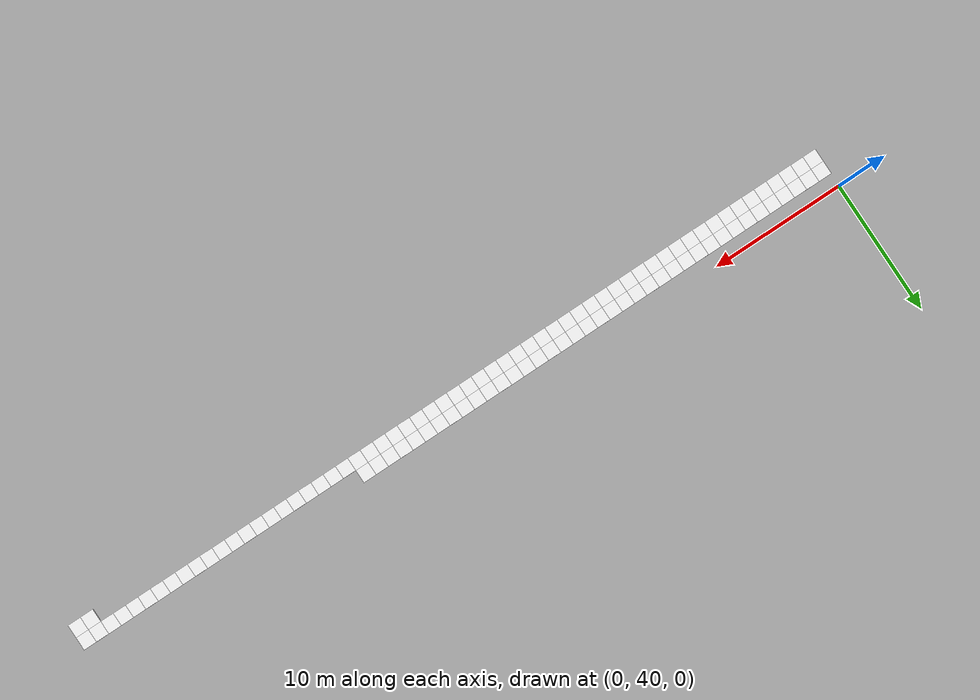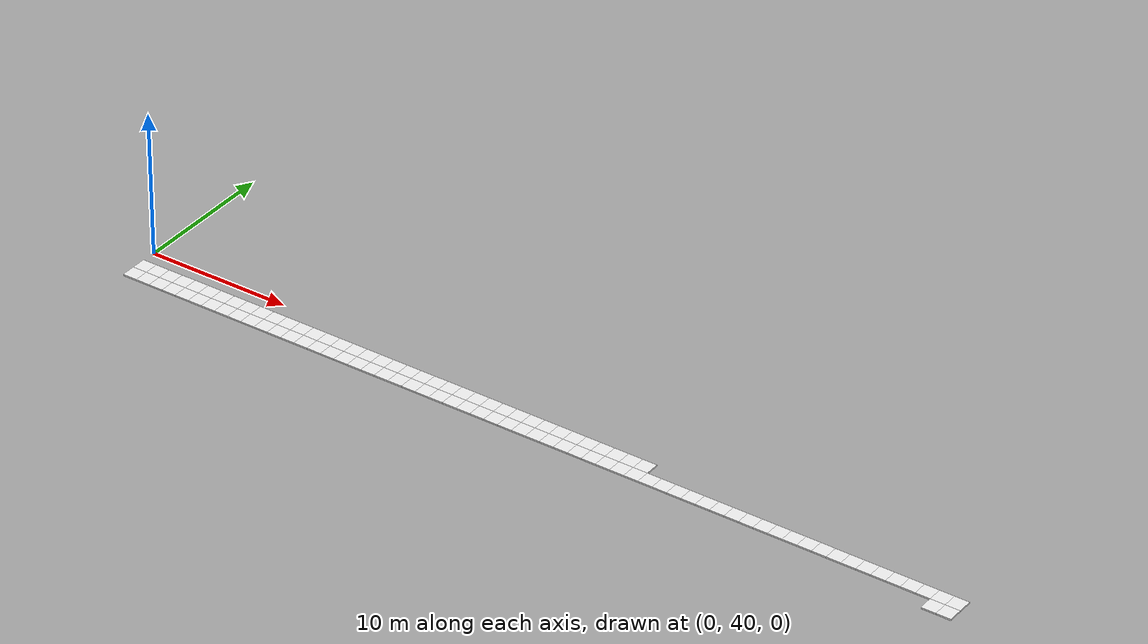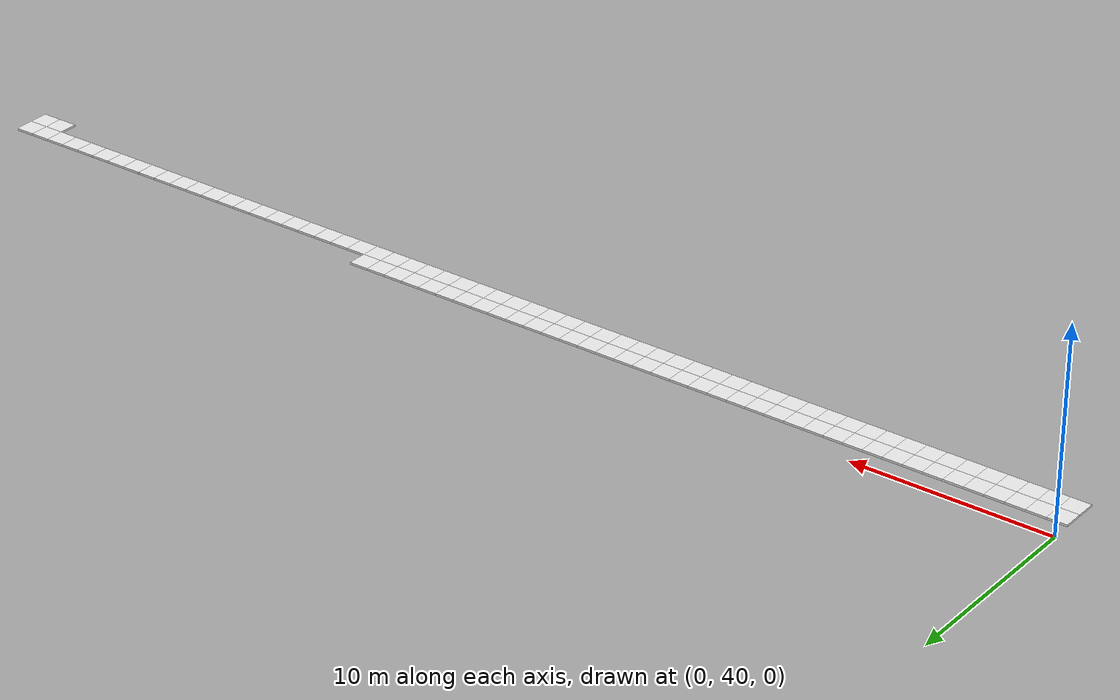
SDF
<sdf version="1.6">
 <world name="grid_world">
  <model name="cell_58_36">
   <static>true</static>
   <link name="link">
    <collision name="collision"><geometry><box><size>1 1 0.1</size></box></geometry></collision>
    <visual name="visual">
     <geometry><box><size>1 1 0.1</size></box></geometry>
     <material>
      <script><uri>file://media/materials/scripts/gazebo.material</uri><name>Gazebo/White</name></script>
     </material>
    </visual>
    <pose>58.5 36.5 0.05 0 0 0</pose>
   </link>
  </model>
  <model name="cell_59_36">
   <static>true</static>
   <link name="link">
    <collision name="collision"><geometry><box><size>1 1 0.1</size></box></geometry></collision>
    <visual name="visual">
     <geometry><box><size>1 1 0.1</size></box></geometry>
     <material>
      <script><uri>file://media/materials/scripts/gazebo.material</uri><name>Gazebo/White</name></script>
     </material>
    </visual>
    <pose>59.5 36.5 0.05 0 0 0</pose>
   </link>
  </model>
  <model name="cell_0_37">
   <static>true</static>
   <link name="link">
    <collision name="collision"><geometry><box><size>1 1 0.1</size></box></geometry></collision>
    <visual name="visual">
     <geometry><box><size>1 1 0.1</size></box></geometry>
     <material>
      <script><uri>file://media/materials/scripts/gazebo.material</uri><name>Gazebo/White</name></script>
     </material>
    </visual>
    <pose>0.5 37.5 0.05 0 0 0</pose>
   </link>
  </model>
  <model name="cell_1_37">
   <static>true</static>
   <link name="link">
    <collision name="collision"><geometry><box><size>1 1 0.1</size></box></geometry></collision>
    <visual name="visual">
     <geometry><box><size>1 1 0.1</size></box></geometry>
     <material>
      <script><uri>file://media/materials/scripts/gazebo.material</uri><name>Gazebo/White</name></script>
     </material>
    </visual>
    <pose>1.5 37.5 0.05 0 0 0</pose>
   </link>
  </model>
  <model name="cell_2_37">
   <static>true</static>
   <link name="link">
    <collision name="collision"><geometry><box><size>1 1 0.1</size></box></geometry></collision>
    <visual name="visual">
     <geometry><box><size>1 1 0.1</size></box></geometry>
     <material>
      <script><uri>file://media/materials/scripts/gazebo.material</uri><name>Gazebo/White</name></script>
     </material>
    </visual>
    <pose>2.5 37.5 0.05 0 0 0</pose>
   </link>
  </model>
  <model name="cell_3_37">
   <static>true</static>
   <link name="link">
    <collision name="collision"><geometry><box><size>1 1 0.1</size></box></geometry></collision>
    <visual name="visual">
     <geometry><box><size>1 1 0.1</size></box></geometry>
     <material>
      <script><uri>file://media/materials/scripts/gazebo.material</uri><name>Gazebo/White</name></script>
     </material>
    </visual>
    <pose>3.5 37.5 0.05 0 0 0</pose>
   </link>
  </model>
  <model name="cell_4_37">
   <static>true</static>
   <link name="link">
    <collision name="collision"><geometry><box><size>1 1 0.1</size></box></geometry></collision>
    <visual name="visual">
     <geometry><box><size>1 1 0.1</size></box></geometry>
     <material>
      <script><uri>file://media/materials/scripts/gazebo.material</uri><name>Gazebo/White</name></script>
     </material>
    </visual>
    <pose>4.5 37.5 0.05 0 0 0</pose>
   </link>
  </model>
  <model name="cell_5_37">
   <static>true</static>
   <link name="link">
    <collision name="collision"><geometry><box><size>1 1 0.1</size></box></geometry></collision>
    <visual name="visual">
     <geometry><box><size>1 1 0.1</size></box></geometry>
     <material>
      <script><uri>file://media/materials/scripts/gazebo.material</uri><name>Gazebo/White</name></script>
     </material>
    </visual>
    <pose>5.5 37.5 0.05 0 0 0</pose>
   </link>
  </model>
  <model name="cell_6_37">
   <static>true</static>
   <link name="link">
    <collision name="collision"><geometry><box><size>1 1 0.1</size></box></geometry></collision>
    <visual name="visual">
     <geometry><box><size>1 1 0.1</size></box></geometry>
     <material>
      <script><uri>file://media/materials/scripts/gazebo.material</uri><name>Gazebo/White</name></script>
     </material>
    </visual>
    <pose>6.5 37.5 0.05 0 0 0</pose>
   </link>
  </model>
  <model name="cell_7_37">
   <static>true</static>
   <link name="link">
    <collision name="collision"><geometry><box><size>1 1 0.1</size></box></geometry></collision>
    <visual name="visual">
     <geometry><box><size>1 1 0.1</size></box></geometry>
     <material>
      <script><uri>file://media/materials/scripts/gazebo.material</uri><name>Gazebo/White</name></script>
     </material>
    </visual>
    <pose>7.5 37.5 0.05 0 0 0</pose>
   </link>
  </model>
  <model name="cell_8_37">
   <static>true</static>
   <link name="link">
    <collision name="collision"><geometry><box><size>1 1 0.1</size></box></geometry></collision>
    <visual name="visual">
     <geometry><box><size>1 1 0.1</size></box></geometry>
     <material>
      <script><uri>file://media/materials/scripts/gazebo.material</uri><name>Gazebo/White</name></script>
     </material>
    </visual>
    <pose>8.5 37.5 0.05 0 0 0</pose>
   </link>
  </model>
  <model name="cell_9_37">
   <static>true</static>
   <link name="link">
    <collision name="collision"><geometry><box><size>1 1 0.1</size></box></geometry></collision>
    <visual name="visual">
     <geometry><box><size>1 1 0.1</size></box></geometry>
     <material>
      <script><uri>file://media/materials/scripts/gazebo.material</uri><name>Gazebo/White</name></script>
     </material>
    </visual>
    <pose>9.5 37.5 0.05 0 0 0</pose>
   </link>
  </model>
  <model name="cell_10_37">
   <static>true</static>
   <link name="link">
    <collision name="collision"><geometry><box><size>1 1 0.1</size></box></geometry></collision>
    <visual name="visual">
     <geometry><box><size>1 1 0.1</size></box></geometry>
     <material>
      <script><uri>file://media/materials/scripts/gazebo.material</uri><name>Gazebo/White</name></script>
     </material>
    </visual>
    <pose>10.5 37.5 0.05 0 0 0</pose>
   </link>
  </model>
  <model name="cell_11_37">
   <static>true</static>
   <link name="link">
    <collision name="collision"><geometry><box><size>1 1 0.1</size></box></geometry></collision>
    <visual name="visual">
     <geometry><box><size>1 1 0.1</size></box></geometry>
     <material>
      <script><uri>file://media/materials/scripts/gazebo.material</uri><name>Gazebo/White</name></script>
     </material>
    </visual>
    <pose>11.5 37.5 0.05 0 0 0</pose>
   </link>
  </model>
  <model name="cell_12_37">
   <static>true</static>
   <link name="link">
    <collision name="collision"><geometry><box><size>1 1 0.1</size></box></geometry></collision>
    <visual name="visual">
     <geometry><box><size>1 1 0.1</size></box></geometry>
     <material>
      <script><uri>file://media/materials/scripts/gazebo.material</uri><name>Gazebo/White</name></script>
     </material>
    </visual>
    <pose>12.5 37.5 0.05 0 0 0</pose>
   </link>
  </model>
  <model name="cell_13_37">
   <static>true</static>
   <link name="link">
    <collision name="collision"><geometry><box><size>1 1 0.1</size></box></geometry></collision>
    <visual name="visual">
     <geometry><box><size>1 1 0.1</size></box></geometry>
     <material>
      <script><uri>file://media/materials/scripts/gazebo.material</uri><name>Gazebo/White</name></script>
     </material>
    </visual>
    <pose>13.5 37.5 0.05 0 0 0</pose>
   </link>
  </model>
  <model name="cell_14_37">
   <static>true</static>
   <link name="link">
    <collision name="collision"><geometry><box><size>1 1 0.1</size></box></geometry></collision>
    <visual name="visual">
     <geometry><box><size>1 1 0.1</size></box></geometry>
     <material>
      <script><uri>file://media/materials/scripts/gazebo.material</uri><name>Gazebo/White</name></script>
     </material>
    </visual>
    <pose>14.5 37.5 0.05 0 0 0</pose>
   </link>
  </model>
  <model name="cell_15_37">
   <static>true</static>
   <link name="link">
    <collision name="collision"><geometry><box><size>1 1 0.1</size></box></geometry></collision>
    <visual name="visual">
     <geometry><box><size>1 1 0.1</size></box></geometry>
     <material>
      <script><uri>file://media/materials/scripts/gazebo.material</uri><name>Gazebo/White</name></script>
     </material>
    </visual>
    <pose>15.5 37.5 0.05 0 0 0</pose>
   </link>
  </model>
  <model name="cell_16_37">
   <static>true</static>
   <link name="link">
    <collision name="collision"><geometry><box><size>1 1 0.1</size></box></geometry></collision>
    <visual name="visual">
     <geometry><box><size>1 1 0.1</size></box></geometry>
     <material>
      <script><uri>file://media/materials/scripts/gazebo.material</uri><name>Gazebo/White</name></script>
     </material>
    </visual>
    <pose>16.5 37.5 0.05 0 0 0</pose>
   </link>
  </model>
  <model name="cell_17_37">
   <static>true</static>
   <link name="link">
    <collision name="collision"><geometry><box><size>1 1 0.1</size></box></geometry></collision>
    <visual name="visual">
     <geometry><box><size>1 1 0.1</size></box></geometry>
     <material>
      <script><uri>file://media/materials/scripts/gazebo.material</uri><name>Gazebo/White</name></script>
     </material>
    </visual>
    <pose>17.5 37.5 0.05 0 0 0</pose>
   </link>
  </model>
  <model name="cell_18_37">
   <static>true</static>
   <link name="link">
    <collision name="collision"><geometry><box><size>1 1 0.1</size></box></geometry></collision>
    <visual name="visual">
     <geometry><box><size>1 1 0.1</size></box></geometry>
     <material>
      <script><uri>file://media/materials/scripts/gazebo.material</uri><name>Gazebo/White</name></script>
     </material>
    </visual>
    <pose>18.5 37.5 0.05 0 0 0</pose>
   </link>
  </model>
  <model name="cell_19_37">
   <static>true</static>
   <link name="link">
    <collision name="collision"><geometry><box><size>1 1 0.1</size></box></geometry></collision>
    <visual name="visual">
     <geometry><box><size>1 1 0.1</size></box></geometry>
     <material>
      <script><uri>file://media/materials/scripts/gazebo.material</uri><name>Gazebo/White</name></script>
     </material>
    </visual>
    <pose>19.5 37.5 0.05 0 0 0</pose>
   </link>
  </model>
  <model name="cell_20_37">
   <static>true</static>
   <link name="link">
    <collision name="collision"><geometry><box><size>1 1 0.1</size></box></geometry></collision>
    <visual name="visual">
     <geometry><box><size>1 1 0.1</size></box></geometry>
     <material>
      <script><uri>file://media/materials/scripts/gazebo.material</uri><name>Gazebo/White</name></script>
     </material>
    </visual>
    <pose>20.5 37.5 0.05 0 0 0</pose>
   </link>
  </model>
  <model name="cell_21_37">
   <static>true</static>
   <link name="link">
    <collision name="collision"><geometry><box><size>1 1 0.1</size></box></geometry></collision>
    <visual name="visual">
     <geometry><box><size>1 1 0.1</size></box></geometry>
     <material>
      <script><uri>file://media/materials/scripts/gazebo.material</uri><name>Gazebo/White</name></script>
     </material>
    </visual>
    <pose>21.5 37.5 0.05 0 0 0</pose>
   </link>
  </model>
  <model name="cell_22_37">
   <static>true</static>
   <link name="link">
    <collision name="collision"><geometry><box><size>1 1 0.1</size></box></geometry></collision>
    <visual name="visual">
     <geometry><box><size>1 1 0.1</size></box></geometry>
     <material>
      <script><uri>file://media/materials/scripts/gazebo.material</uri><name>Gazebo/White</name></script>
     </material>
    </visual>
    <pose>22.5 37.5 0.05 0 0 0</pose>
   </link>
  </model>
  <model name="cell_23_37">
   <static>true</static>
   <link name="link">
    <collision name="collision"><geometry><box><size>1 1 0.1</size></box></geometry></collision>
    <visual name="visual">
     <geometry><box><size>1 1 0.1</size></box></geometry>
     <material>
      <script><uri>file://media/materials/scripts/gazebo.material</uri><name>Gazebo/White</name></script>
     </material>
    </visual>
    <pose>23.5 37.5 0.05 0 0 0</pose>
   </link>
  </model>
  <model name="cell_24_37">
   <static>true</static>
   <link name="link">
    <collision name="collision"><geometry><box><size>1 1 0.1</size></box></geometry></collision>
    <visual name="visual">
     <geometry><box><size>1 1 0.1</size></box></geometry>
     <material>
      <script><uri>file://media/materials/scripts/gazebo.material</uri><name>Gazebo/White</name></script>
     </material>
    </visual>
    <pose>24.5 37.5 0.05 0 0 0</pose>
   </link>
  </model>
  <model name="cell_25_37">
   <static>true</static>
   <link name="link">
    <collision name="collision"><geometry><box><size>1 1 0.1</size></box></geometry></collision>
    <visual name="visual">
     <geometry><box><size>1 1 0.1</size></box></geometry>
     <material>
      <script><uri>file://media/materials/scripts/gazebo.material</uri><name>Gazebo/White</name></script>
     </material>
    </visual>
    <pose>25.5 37.5 0.05 0 0 0</pose>
   </link>
  </model>
  <model name="cell_26_37">
   <static>true</static>
   <link name="link">
    <collision name="collision"><geometry><box><size>1 1 0.1</size></box></geometry></collision>
    <visual name="visual">
     <geometry><box><size>1 1 0.1</size></box></geometry>
     <material>
      <script><uri>file://media/materials/scripts/gazebo.material</uri><name>Gazebo/White</name></script>
     </material>
    </visual>
    <pose>26.5 37.5 0.05 0 0 0</pose>
   </link>
  </model>
  <model name="cell_27_37">
   <static>true</static>
   <link name="link">
    <collision name="collision"><geometry><box><size>1 1 0.1</size></box></geometry></collision>
    <visual name="visual">
     <geometry><box><size>1 1 0.1</size></box></geometry>
     <material>
      <script><uri>file://media/materials/scripts/gazebo.material</uri><name>Gazebo/White</name></script>
     </material>
    </visual>
    <pose>27.5 37.5 0.05 0 0 0</pose>
   </link>
  </model>
  <model name="cell_28_37">
   <static>true</static>
   <link name="link">
    <collision name="collision"><geometry><box><size>1 1 0.1</size></box></geometry></collision>
    <visual name="visual">
     <geometry><box><size>1 1 0.1</size></box></geometry>
     <material>
      <script><uri>file://media/materials/scripts/gazebo.material</uri><name>Gazebo/White</name></script>
     </material>
    </visual>
    <pose>28.5 37.5 0.05 0 0 0</pose>
   </link>
  </model>
  <model name="cell_29_37">
   <static>true</static>
   <link name="link">
    <collision name="collision"><geometry><box><size>1 1 0.1</size></box></geometry></collision>
    <visual name="visual">
     <geometry><box><size>1 1 0.1</size></box></geometry>
     <material>
      <script><uri>file://media/materials/scripts/gazebo.material</uri><name>Gazebo/White</name></script>
     </material>
    </visual>
    <pose>29.5 37.5 0.05 0 0 0</pose>
   </link>
  </model>
  <model name="cell_30_37">
   <static>true</static>
   <link name="link">
    <collision name="collision"><geometry><box><size>1 1 0.1</size></box></geometry></collision>
    <visual name="visual">
     <geometry><box><size>1 1 0.1</size></box></geometry>
     <material>
      <script><uri>file://media/materials/scripts/gazebo.material</uri><name>Gazebo/White</name></script>
     </material>
    </visual>
    <pose>30.5 37.5 0.05 0 0 0</pose>
   </link>
  </model>
  <model name="cell_31_37">
   <static>true</static>
   <link name="link">
    <collision name="collision"><geometry><box><size>1 1 0.1</size></box></geometry></collision>
    <visual name="visual">
     <geometry><box><size>1 1 0.1</size></box></geometry>
     <material>
      <script><uri>file://media/materials/scripts/gazebo.material</uri><name>Gazebo/White</name></script>
     </material>
    </visual>
    <pose>31.5 37.5 0.05 0 0 0</pose>
   </link>
  </model>
  <model name="cell_32_37">
   <static>true</static>
   <link name="link">
    <collision name="collision"><geometry><box><size>1 1 0.1</size></box></geometry></collision>
    <visual name="visual">
     <geometry><box><size>1 1 0.1</size></box></geometry>
     <material>
      <script><uri>file://media/materials/scripts/gazebo.material</uri><name>Gazebo/White</name></script>
     </material>
    </visual>
    <pose>32.5 37.5 0.05 0 0 0</pose>
   </link>
  </model>
  <model name="cell_33_37">
   <static>true</static>
   <link name="link">
    <collision name="collision"><geometry><box><size>1 1 0.1</size></box></geometry></collision>
    <visual name="visual">
     <geometry><box><size>1 1 0.1</size></box></geometry>
     <material>
      <script><uri>file://media/materials/scripts/gazebo.material</uri><name>Gazebo/White</name></script>
     </material>
    </visual>
    <pose>33.5 37.5 0.05 0 0 0</pose>
   </link>
  </model>
  <model name="cell_34_37">
   <static>true</static>
   <link name="link">
    <collision name="collision"><geometry><box><size>1 1 0.1</size></box></geometry></collision>
    <visual name="visual">
     <geometry><box><size>1 1 0.1</size></box></geometry>
     <material>
      <script><uri>file://media/materials/scripts/gazebo.material</uri><name>Gazebo/White</name></script>
     </material>
    </visual>
    <pose>34.5 37.5 0.05 0 0 0</pose>
   </link>
  </model>
  <model name="cell_35_37">
   <static>true</static>
   <link name="link">
    <collision name="collision"><geometry><box><size>1 1 0.1</size></box></geometry></collision>
    <visual name="visual">
     <geometry><box><size>1 1 0.1</size></box></geometry>
     <material>
      <script><uri>file://media/materials/scripts/gazebo.material</uri><name>Gazebo/White</name></script>
     </material>
    </visual>
    <pose>35.5 37.5 0.05 0 0 0</pose>
   </link>
  </model>
  <model name="cell_36_37">
   <static>true</static>
   <link name="link">
    <collision name="collision"><geometry><box><size>1 1 0.1</size></box></geometry></collision>
    <visual name="visual">
     <geometry><box><size>1 1 0.1</size></box></geometry>
     <material>
      <script><uri>file://media/materials/scripts/gazebo.material</uri><name>Gazebo/White</name></script>
     </material>
    </visual>
    <pose>36.5 37.5 0.05 0 0 0</pose>
   </link>
  </model>
  <model name="cell_37_37">
   <static>true</static>
   <link name="link">
    <collision name="collision"><geometry><box><size>1 1 0.1</size></box></geometry></collision>
    <visual name="visual">
     <geometry><box><size>1 1 0.1</size></box></geometry>
     <material>
      <script><uri>file://media/materials/scripts/gazebo.material</uri><name>Gazebo/White</name></script>
     </material>
    </visual>
    <pose>37.5 37.5 0.05 0 0 0</pose>
   </link>
  </model>
  <model name="cell_38_37">
   <static>true</static>
   <link name="link">
    <collision name="collision"><geometry><box><size>1 1 0.1</size></box></geometry></collision>
    <visual name="visual">
     <geometry><box><size>1 1 0.1</size></box></geometry>
     <material>
      <script><uri>file://media/materials/scripts/gazebo.material</uri><name>Gazebo/White</name></script>
     </material>
    </visual>
    <pose>38.5 37.5 0.05 0 0 0</pose>
   </link>
  </model>
  <model name="cell_39_37">
   <static>true</static>
   <link name="link">
    <collision name="collision"><geometry><box><size>1 1 0.1</size></box></geometry></collision>
    <visual name="visual">
     <geometry><box><size>1 1 0.1</size></box></geometry>
     <material>
      <script><uri>file://media/materials/scripts/gazebo.material</uri><name>Gazebo/White</name></script>
     </material>
    </visual>
    <pose>39.5 37.5 0.05 0 0 0</pose>
   </link>
  </model>
  <model name="cell_40_37">
   <static>true</static>
   <link name="link">
    <collision name="collision"><geometry><box><size>1 1 0.1</size></box></geometry></collision>
    <visual name="visual">
     <geometry><box><size>1 1 0.1</size></box></geometry>
     <material>
      <script><uri>file://media/materials/scripts/gazebo.material</uri><name>Gazebo/White</name></script>
     </material>
    </visual>
    <pose>40.5 37.5 0.05 0 0 0</pose>
   </link>
  </model>
  <model name="cell_41_37">
   <static>true</static>
   <link name="link">
    <collision name="collision"><geometry><box><size>1 1 0.1</size></box></geometry></collision>
    <visual name="visual">
     <geometry><box><size>1 1 0.1</size></box></geometry>
     <material>
      <script><uri>file://media/materials/scripts/gazebo.material</uri><name>Gazebo/White</name></script>
     </material>
    </visual>
    <pose>41.5 37.5 0.05 0 0 0</pose>
   </link>
  </model>
  <model name="cell_42_37">
   <static>true</static>
   <link name="link">
    <collision name="collision"><geometry><box><size>1 1 0.1</size></box></geometry></collision>
    <visual name="visual">
     <geometry><box><size>1 1 0.1</size></box></geometry>
     <material>
      <script><uri>file://media/materials/scripts/gazebo.material</uri><name>Gazebo/White</name></script>
     </material>
    </visual>
    <pose>42.5 37.5 0.05 0 0 0</pose>
   </link>
  </model>
  <model name="cell_43_37">
   <static>true</static>
   <link name="link">
    <collision name="collision"><geometry><box><size>1 1 0.1</size></box></geometry></collision>
    <visual name="visual">
     <geometry><box><size>1 1 0.1</size></box></geometry>
     <material>
      <script><uri>file://media/materials/scripts/gazebo.material</uri><name>Gazebo/White</name></script>
     </material>
    </visual>
    <pose>43.5 37.5 0.05 0 0 0</pose>
   </link>
  </model>
  <model name="cell_44_37">
   <static>true</static>
   <link name="link">
    <collision name="collision"><geometry><box><size>1 1 0.1</size></box></geometry></collision>
    <visual name="visual">
     <geometry><box><size>1 1 0.1</size></box></geometry>
     <material>
      <script><uri>file://media/materials/scripts/gazebo.material</uri><name>Gazebo/White</name></script>
     </material>
    </visual>
    <pose>44.5 37.5 0.05 0 0 0</pose>
   </link>
  </model>
  <model name="cell_45_37">
   <static>true</static>
   <link name="link">
    <collision name="collision"><geometry><box><size>1 1 0.1</size></box></geometry></collision>
    <visual name="visual">
     <geometry><box><size>1 1 0.1</size></box></geometry>
     <material>
      <script><uri>file://media/materials/scripts/gazebo.material</uri><name>Gazebo/White</name></script>
     </material>
    </visual>
    <pose>45.5 37.5 0.05 0 0 0</pose>
   </link>
  </model>
  <model name="cell_46_37">
   <static>true</static>
   <link name="link">
    <collision name="collision"><geometry><box><size>1 1 0.1</size></box></geometry></collision>
    <visual name="visual">
     <geometry><box><size>1 1 0.1</size></box></geometry>
     <material>
      <script><uri>file://media/materials/scripts/gazebo.material</uri><name>Gazebo/White</name></script>
     </material>
    </visual>
    <pose>46.5 37.5 0.05 0 0 0</pose>
   </link>
  </model>
  <model name="cell_47_37">
   <static>true</static>
   <link name="link">
    <collision name="collision"><geometry><box><size>1 1 0.1</size></box></geometry></collision>
    <visual name="visual">
     <geometry><box><size>1 1 0.1</size></box></geometry>
     <material>
      <script><uri>file://media/materials/scripts/gazebo.material</uri><name>Gazebo/White</name></script>
     </material>
    </visual>
    <pose>47.5 37.5 0.05 0 0 0</pose>
   </link>
  </model>
  <model name="cell_48_37">
   <static>true</static>
   <link name="link">
    <collision name="collision"><geometry><box><size>1 1 0.1</size></box></geometry></collision>
    <visual name="visual">
     <geometry><box><size>1 1 0.1</size></box></geometry>
     <material>
      <script><uri>file://media/materials/scripts/gazebo.material</uri><name>Gazebo/White</name></script>
     </material>
    </visual>
    <pose>48.5 37.5 0.05 0 0 0</pose>
   </link>
  </model>
  <model name="cell_49_37">
   <static>true</static>
   <link name="link">
    <collision name="collision"><geometry><box><size>1 1 0.1</size></box></geometry></collision>
    <visual name="visual">
     <geometry><box><size>1 1 0.1</size></box></geometry>
     <material>
      <script><uri>file://media/materials/scripts/gazebo.material</uri><name>Gazebo/White</name></script>
     </material>
    </visual>
    <pose>49.5 37.5 0.05 0 0 0</pose>
   </link>
  </model>
  <model name="cell_50_37">
   <static>true</static>
   <link name="link">
    <collision name="collision"><geometry><box><size>1 1 0.1</size></box></geometry></collision>
    <visual name="visual">
     <geometry><box><size>1 1 0.1</size></box></geometry>
     <material>
      <script><uri>file://media/materials/scripts/gazebo.material</uri><name>Gazebo/White</name></script>
     </material>
    </visual>
    <pose>50.5 37.5 0.05 0 0 0</pose>
   </link>
  </model>
  <model name="cell_51_37">
   <static>true</static>
   <link name="link">
    <collision name="collision"><geometry><box><size>1 1 0.1</size></box></geometry></collision>
    <visual name="visual">
     <geometry><box><size>1 1 0.1</size></box></geometry>
     <material>
      <script><uri>file://media/materials/scripts/gazebo.material</uri><name>Gazebo/White</name></script>
     </material>
    </visual>
    <pose>51.5 37.5 0.05 0 0 0</pose>
   </link>
  </model>
  <model name="cell_52_37">
   <static>true</static>
   <link name="link">
    <collision name="collision"><geometry><box><size>1 1 0.1</size></box></geometry></collision>
    <visual name="visual">
     <geometry><box><size>1 1 0.1</size></box></geometry>
     <material>
      <script><uri>file://media/materials/scripts/gazebo.material</uri><name>Gazebo/White</name></script>
     </material>
    </visual>
    <pose>52.5 37.5 0.05 0 0 0</pose>
   </link>
  </model>
  <model name="cell_53_37">
   <static>true</static>
   <link name="link">
    <collision name="collision"><geometry><box><size>1 1 0.1</size></box></geometry></collision>
    <visual name="visual">
     <geometry><box><size>1 1 0.1</size></box></geometry>
     <material>
      <script><uri>file://media/materials/scripts/gazebo.material</uri><name>Gazebo/White</name></script>
     </material>
    </visual>
    <pose>53.5 37.5 0.05 0 0 0</pose>
   </link>
  </model>
  <model name="cell_54_37">
   <static>true</static>
   <link name="link">
    <collision name="collision"><geometry><box><size>1 1 0.1</size></box></geometry></collision>
    <visual name="visual">
     <geometry><box><size>1 1 0.1</size></box></geometry>
     <material>
      <script><uri>file://media/materials/scripts/gazebo.material</uri><name>Gazebo/White</name></script>
     </material>
    </visual>
    <pose>54.5 37.5 0.05 0 0 0</pose>
   </link>
  </model>
  <model name="cell_55_37">
   <static>true</static>
   <link name="link">
    <collision name="collision"><geometry><box><size>1 1 0.1</size></box></geometry></collision>
    <visual name="visual">
     <geometry><box><size>1 1 0.1</size></box></geometry>
     <material>
      <script><uri>file://media/materials/scripts/gazebo.material</uri><name>Gazebo/White</name></script>
     </material>
    </visual>
    <pose>55.5 37.5 0.05 0 0 0</pose>
   </link>
  </model>
  <model name="cell_56_37">
   <static>true</static>
   <link name="link">
    <collision name="collision"><geometry><box><size>1 1 0.1</size></box></geometry></collision>
    <visual name="visual">
     <geometry><box><size>1 1 0.1</size></box></geometry>
     <material>
      <script><uri>file://media/materials/scripts/gazebo.material</uri><name>Gazebo/White</name></script>
     </material>
    </visual>
    <pose>56.5 37.5 0.05 0 0 0</pose>
   </link>
  </model>
  <model name="cell_57_37">
   <static>true</static>
   <link name="link">
    <collision name="collision"><geometry><box><size>1 1 0.1</size></box></geometry></collision>
    <visual name="visual">
     <geometry><box><size>1 1 0.1</size></box></geometry>
     <material>
      <script><uri>file://media/materials/scripts/gazebo.material</uri><name>Gazebo/White</name></script>
     </material>
    </visual>
    <pose>57.5 37.5 0.05 0 0 0</pose>
   </link>
  </model>
  <model name="cell_58_37">
   <static>true</static>
   <link name="link">
    <collision name="collision"><geometry><box><size>1 1 0.1</size></box></geometry></collision>
    <visual name="visual">
     <geometry><box><size>1 1 0.1</size></box></geometry>
     <material>
      <script><uri>file://media/materials/scripts/gazebo.material</uri><name>Gazebo/White</name></script>
     </material>
    </visual>
    <pose>58.5 37.5 0.05 0 0 0</pose>
   </link>
  </model>
  <model name="cell_59_37">
   <static>true</static>
   <link name="link">
    <collision name="collision"><geometry><box><size>1 1 0.1</size></box></geometry></collision>
    <visual name="visual">
     <geometry><box><size>1 1 0.1</size></box></geometry>
     <material>
      <script><uri>file://media/materials/scripts/gazebo.material</uri><name>Gazebo/White</name></script>
     </material>
    </visual>
    <pose>59.5 37.5 0.05 0 0 0</pose>
   </link>
  </model>
  <model name="cell_0_38">
   <static>true</static>
   <link name="link">
    <collision name="collision"><geometry><box><size>1 1 0.1</size></box></geometry></collision>
    <visual name="visual">
     <geometry><box><size>1 1 0.1</size></box></geometry>
     <material>
      <script><uri>file://media/materials/scripts/gazebo.material</uri><name>Gazebo/White</name></script>
     </material>
    </visual>
    <pose>0.5 38.5 0.05 0 0 0</pose>
   </link>
  </model>
  <model name="cell_1_38">
   <static>true</static>
   <link name="link">
    <collision name="collision"><geometry><box><size>1 1 0.1</size></box></geometry></collision>
    <visual name="visual">
     <geometry><box><size>1 1 0.1</size></box></geometry>
     <material>
      <script><uri>file://media/materials/scripts/gazebo.material</uri><name>Gazebo/White</name></script>
     </material>
    </visual>
    <pose>1.5 38.5 0.05 0 0 0</pose>
   </link>
  </model>
  <model name="cell_2_38">
   <static>true</static>
   <link name="link">
    <collision name="collision"><geometry><box><size>1 1 0.1</size></box></geometry></collision>
    <visual name="visual">
     <geometry><box><size>1 1 0.1</size></box></geometry>
     <material>
      <script><uri>file://media/materials/scripts/gazebo.material</uri><name>Gazebo/White</name></script>
     </material>
    </visual>
    <pose>2.5 38.5 0.05 0 0 0</pose>
   </link>
  </model>
  <model name="cell_3_38">
   <static>true</static>
   <link name="link">
    <collision name="collision"><geometry><box><size>1 1 0.1</size></box></geometry></collision>
    <visual name="visual">
     <geometry><box><size>1 1 0.1</size></box></geometry>
     <material>
      <script><uri>file://media/materials/scripts/gazebo.material</uri><name>Gazebo/White</name></script>
     </material>
    </visual>
    <pose>3.5 38.5 0.05 0 0 0</pose>
   </link>
  </model>
  <model name="cell_4_38">
   <static>true</static>
   <link name="link">
    <collision name="collision"><geometry><box><size>1 1 0.1</size></box></geometry></collision>
    <visual name="visual">
     <geometry><box><size>1 1 0.1</size></box></geometry>
     <material>
      <script><uri>file://media/materials/scripts/gazebo.material</uri><name>Gazebo/White</name></script>
     </material>
    </visual>
    <pose>4.5 38.5 0.05 0 0 0</pose>
   </link>
  </model>
  <model name="cell_5_38">
   <static>true</static>
   <link name="link">
    <collision name="collision"><geometry><box><size>1 1 0.1</size></box></geometry></collision>
    <visual name="visual">
     <geometry><box><size>1 1 0.1</size></box></geometry>
     <material>
      <script><uri>file://media/materials/scripts/gazebo.material</uri><name>Gazebo/White</name></script>
     </material>
    </visual>
    <pose>5.5 38.5 0.05 0 0 0</pose>
   </link>
  </model>
  <model name="cell_6_38">
   <static>true</static>
   <link name="link">
    <collision name="collision"><geometry><box><size>1 1 0.1</size></box></geometry></collision>
    <visual name="visual">
     <geometry><box><size>1 1 0.1</size></box></geometry>
     <material>
      <script><uri>file://media/materials/scripts/gazebo.material</uri><name>Gazebo/White</name></script>
     </material>
    </visual>
    <pose>6.5 38.5 0.05 0 0 0</pose>
   </link>
  </model>
  <model name="cell_7_38">
   <static>true</static>
   <link name="link">
    <collision name="collision"><geometry><box><size>1 1 0.1</size></box></geometry></collision>
    <visual name="visual">
     <geometry><box><size>1 1 0.1</size></box></geometry>
     <material>
      <script><uri>file://media/materials/scripts/gazebo.material</uri><name>Gazebo/White</name></script>
     </material>
    </visual>
    <pose>7.5 38.5 0.05 0 0 0</pose>
   </link>
  </model>
  <model name="cell_8_38">
   <static>true</static>
   <link name="link">
    <collision name="collision"><geometry><box><size>1 1 0.1</size></box></geometry></collision>
    <visual name="visual">
     <geometry><box><size>1 1 0.1</size></box></geometry>
     <material>
      <script><uri>file://media/materials/scripts/gazebo.material</uri><name>Gazebo/White</name></script>
     </material>
    </visual>
    <pose>8.5 38.5 0.05 0 0 0</pose>
   </link>
  </model>
  <model name="cell_9_38">
   <static>true</static>
   <link name="link">
    <collision name="collision"><geometry><box><size>1 1 0.1</size></box></geometry></collision>
    <visual name="visual">
     <geometry><box><size>1 1 0.1</size></box></geometry>
     <material>
      <script><uri>file://media/materials/scripts/gazebo.material</uri><name>Gazebo/White</name></script>
     </material>
    </visual>
    <pose>9.5 38.5 0.05 0 0 0</pose>
   </link>
  </model>
  <model name="cell_10_38">
   <static>true</static>
   <link name="link">
    <collision name="collision"><geometry><box><size>1 1 0.1</size></box></geometry></collision>
    <visual name="visual">
     <geometry><box><size>1 1 0.1</size></box></geometry>
     <material>
      <script><uri>file://media/materials/scripts/gazebo.material</uri><name>Gazebo/White</name></script>
     </material>
    </visual>
    <pose>10.5 38.5 0.05 0 0 0</pose>
   </link>
  </model>
  <model name="cell_11_38">
   <static>true</static>
   <link name="link">
    <collision name="collision"><geometry><box><size>1 1 0.1</size></box></geometry></collision>
    <visual name="visual">
     <geometry><box><size>1 1 0.1</size></box></geometry>
     <material>
      <script><uri>file://media/materials/scripts/gazebo.material</uri><name>Gazebo/White</name></script>
     </material>
    </visual>
    <pose>11.5 38.5 0.05 0 0 0</pose>
   </link>
  </model>
  <model name="cell_12_38">
   <static>true</static>
   <link name="link">
    <collision name="collision"><geometry><box><size>1 1 0.1</size></box></geometry></collision>
    <visual name="visual">
     <geometry><box><size>1 1 0.1</size></box></geometry>
     <material>
      <script><uri>file://media/materials/scripts/gazebo.material</uri><name>Gazebo/White</name></script>
     </material>
    </visual>
    <pose>12.5 38.5 0.05 0 0 0</pose>
   </link>
  </model>
  <model name="cell_13_38">
   <static>true</static>
   <link name="link">
    <collision name="collision"><geometry><box><size>1 1 0.1</size></box></geometry></collision>
    <visual name="visual">
     <geometry><box><size>1 1 0.1</size></box></geometry>
     <material>
      <script><uri>file://media/materials/scripts/gazebo.material</uri><name>Gazebo/White</name></script>
     </material>
    </visual>
    <pose>13.5 38.5 0.05 0 0 0</pose>
   </link>
  </model>
  <model name="cell_14_38">
   <static>true</static>
   <link name="link">
    <collision name="collision"><geometry><box><size>1 1 0.1</size></box></geometry></collision>
    <visual name="visual">
     <geometry><box><size>1 1 0.1</size></box></geometry>
     <material>
      <script><uri>file://media/materials/scripts/gazebo.material</uri><name>Gazebo/White</name></script>
     </material>
    </visual>
    <pose>14.5 38.5 0.05 0 0 0</pose>
   </link>
  </model>
  <model name="cell_15_38">
   <static>true</static>
   <link name="link">
    <collision name="collision"><geometry><box><size>1 1 0.1</size></box></geometry></collision>
    <visual name="visual">
     <geometry><box><size>1 1 0.1</size></box></geometry>
     <material>
      <script><uri>file://media/materials/scripts/gazebo.material</uri><name>Gazebo/White</name></script>
     </material>
    </visual>
    <pose>15.5 38.5 0.05 0 0 0</pose>
   </link>
  </model>
  <model name="cell_16_38">
   <static>true</static>
   <link name="link">
    <collision name="collision"><geometry><box><size>1 1 0.1</size></box></geometry></collision>
    <visual name="visual">
     <geometry><box><size>1 1 0.1</size></box></geometry>
     <material>
      <script><uri>file://media/materials/scripts/gazebo.material</uri><name>Gazebo/White</name></script>
     </material>
    </visual>
    <pose>16.5 38.5 0.05 0 0 0</pose>
   </link>
  </model>
  <model name="cell_17_38">
   <static>true</static>
   <link name="link">
    <collision name="collision"><geometry><box><size>1 1 0.1</size></box></geometry></collision>
    <visual name="visual">
     <geometry><box><size>1 1 0.1</size></box></geometry>
     <material>
      <script><uri>file://media/materials/scripts/gazebo.material</uri><name>Gazebo/White</name></script>
     </material>
    </visual>
    <pose>17.5 38.5 0.05 0 0 0</pose>
   </link>
  </model>
  <model name="cell_18_38">
   <static>true</static>
   <link name="link">
    <collision name="collision"><geometry><box><size>1 1 0.1</size></box></geometry></collision>
    <visual name="visual">
     <geometry><box><size>1 1 0.1</size></box></geometry>
     <material>
      <script><uri>file://media/materials/scripts/gazebo.material</uri><name>Gazebo/White</name></script>
     </material>
    </visual>
    <pose>18.5 38.5 0.05 0 0 0</pose>
   </link>
  </model>
  <model name="cell_19_38">
   <static>true</static>
   <link name="link">
    <collision name="collision"><geometry><box><size>1 1 0.1</size></box></geometry></collision>
    <visual name="visual">
     <geometry><box><size>1 1 0.1</size></box></geometry>
     <material>
      <script><uri>file://media/materials/scripts/gazebo.material</uri><name>Gazebo/White</name></script>
     </material>
    </visual>
    <pose>19.5 38.5 0.05 0 0 0</pose>
   </link>
  </model>
  <model name="cell_20_38">
   <static>true</static>
   <link name="link">
    <collision name="collision"><geometry><box><size>1 1 0.1</size></box></geometry></collision>
    <visual name="visual">
     <geometry><box><size>1 1 0.1</size></box></geometry>
     <material>
      <script><uri>file://media/materials/scripts/gazebo.material</uri><name>Gazebo/White</name></script>
     </material>
    </visual>
    <pose>20.5 38.5 0.05 0 0 0</pose>
   </link>
  </model>
  <model name="cell_21_38">
   <static>true</static>
   <link name="link">
    <collision name="collision"><geometry><box><size>1 1 0.1</size></box></geometry></collision>
    <visual name="visual">
     <geometry><box><size>1 1 0.1</size></box></geometry>
     <material>
      <script><uri>file://media/materials/scripts/gazebo.material</uri><name>Gazebo/White</name></script>
     </material>
    </visual>
    <pose>21.5 38.5 0.05 0 0 0</pose>
   </link>
  </model>
  <model name="cell_22_38">
   <static>true</static>
   <link name="link">
    <collision name="collision"><geometry><box><size>1 1 0.1</size></box></geometry></collision>
    <visual name="visual">
     <geometry><box><size>1 1 0.1</size></box></geometry>
     <material>
      <script><uri>file://media/materials/scripts/gazebo.material</uri><name>Gazebo/White</name></script>
     </material>
    </visual>
    <pose>22.5 38.5 0.05 0 0 0</pose>
   </link>
  </model>
  <model name="cell_23_38">
   <static>true</static>
   <link name="link">
    <collision name="collision"><geometry><box><size>1 1 0.1</size></box></geometry></collision>
    <visual name="visual">
     <geometry><box><size>1 1 0.1</size></box></geometry>
     <material>
      <script><uri>file://media/materials/scripts/gazebo.material</uri><name>Gazebo/White</name></script>
     </material>
    </visual>
    <pose>23.5 38.5 0.05 0 0 0</pose>
   </link>
  </model>
  <model name="cell_24_38">
   <static>true</static>
   <link name="link">
    <collision name="collision"><geometry><box><size>1 1 0.1</size></box></geometry></collision>
    <visual name="visual">
     <geometry><box><size>1 1 0.1</size></box></geometry>
     <material>
      <script><uri>file://media/materials/scripts/gazebo.material</uri><name>Gazebo/White</name></script>
     </material>
    </visual>
    <pose>24.5 38.5 0.05 0 0 0</pose>
   </link>
  </model>
  <model name="cell_25_38">
   <static>true</static>
   <link name="link">
    <collision name="collision"><geometry><box><size>1 1 0.1</size></box></geometry></collision>
    <visual name="visual">
     <geometry><box><size>1 1 0.1</size></box></geometry>
     <material>
      <script><uri>file://media/materials/scripts/gazebo.material</uri><name>Gazebo/White</name></script>
     </material>
    </visual>
    <pose>25.5 38.5 0.05 0 0 0</pose>
   </link>
  </model>
  <model name="cell_26_38">
   <static>true</static>
   <link name="link">
    <collision name="collision"><geometry><box><size>1 1 0.1</size></box></geometry></collision>
    <visual name="visual">
     <geometry><box><size>1 1 0.1</size></box></geometry>
     <material>
      <script><uri>file://media/materials/scripts/gazebo.material</uri><name>Gazebo/White</name></script>
     </material>
    </visual>
    <pose>26.5 38.5 0.05 0 0 0</pose>
   </link>
  </model>
  <model name="cell_27_38">
   <static>true</static>
   <link name="link">
    <collision name="collision"><geometry><box><size>1 1 0.1</size></box></geometry></collision>
    <visual name="visual">
     <geometry><box><size>1 1 0.1</size></box></geometry>
     <material>
      <script><uri>file://media/materials/scripts/gazebo.material</uri><name>Gazebo/White</name></script>
     </material>
    </visual>
    <pose>27.5 38.5 0.05 0 0 0</pose>
   </link>
  </model>
  <model name="cell_28_38">
   <static>true</static>
   <link name="link">
    <collision name="collision"><geometry><box><size>1 1 0.1</size></box></geometry></collision>
    <visual name="visual">
     <geometry><box><size>1 1 0.1</size></box></geometry>
     <material>
      <script><uri>file://media/materials/scripts/gazebo.material</uri><name>Gazebo/White</name></script>
     </material>
    </visual>
    <pose>28.5 38.5 0.05 0 0 0</pose>
   </link>
  </model>
  <model name="cell_29_38">
   <static>true</static>
   <link name="link">
    <collision name="collision"><geometry><box><size>1 1 0.1</size></box></geometry></collision>
    <visual name="visual">
     <geometry><box><size>1 1 0.1</size></box></geometry>
     <material>
      <script><uri>file://media/materials/scripts/gazebo.material</uri><name>Gazebo/White</name></script>
     </material>
    </visual>
    <pose>29.5 38.5 0.05 0 0 0</pose>
   </link>
  </model>
  <model name="cell_30_38">
   <static>true</static>
   <link name="link">
    <collision name="collision"><geometry><box><size>1 1 0.1</size></box></geometry></collision>
    <visual name="visual">
     <geometry><box><size>1 1 0.1</size></box></geometry>
     <material>
      <script><uri>file://media/materials/scripts/gazebo.material</uri><name>Gazebo/White</name></script>
     </material>
    </visual>
    <pose>30.5 38.5 0.05 0 0 0</pose>
   </link>
  </model>
  <model name="cell_31_38">
   <static>true</static>
   <link name="link">
    <collision name="collision"><geometry><box><size>1 1 0.1</size></box></geometry></collision>
    <visual name="visual">
     <geometry><box><size>1 1 0.1</size></box></geometry>
     <material>
      <script><uri>file://media/materials/scripts/gazebo.material</uri><name>Gazebo/White</name></script>
     </material>
    </visual>
    <pose>31.5 38.5 0.05 0 0 0</pose>
   </link>
  </model>
  <model name="cell_32_38">
   <static>true</static>
   <link name="link">
    <collision name="collision"><geometry><box><size>1 1 0.1</size></box></geometry></collision>
    <visual name="visual">
     <geometry><box><size>1 1 0.1</size></box></geometry>
     <material>
      <script><uri>file://media/materials/scripts/gazebo.material</uri><name>Gazebo/White</name></script>
     </material>
    </visual>
    <pose>32.5 38.5 0.05 0 0 0</pose>
   </link>
  </model>
  <model name="cell_33_38">
   <static>true</static>
   <link name="link">
    <collision name="collision"><geometry><box><size>1 1 0.1</size></box></geometry></collision>
    <visual name="visual">
     <geometry><box><size>1 1 0.1</size></box></geometry>
     <material>
      <script><uri>file://media/materials/scripts/gazebo.material</uri><name>Gazebo/White</name></script>
     </material>
    </visual>
    <pose>33.5 38.5 0.05 0 0 0</pose>
   </link>
  </model>
  <model name="cell_34_38">
   <static>true</static>
   <link name="link">
    <collision name="collision"><geometry><box><size>1 1 0.1</size></box></geometry></collision>
    <visual name="visual">
     <geometry><box><size>1 1 0.1</size></box></geometry>
     <material>
      <script><uri>file://media/materials/scripts/gazebo.material</uri><name>Gazebo/White</name></script>
     </material>
    </visual>
    <pose>34.5 38.5 0.05 0 0 0</pose>
   </link>
  </model>
  <model name="cell_35_38">
   <static>true</static>
   <link name="link">
    <collision name="collision"><geometry><box><size>1 1 0.1</size></box></geometry></collision>
    <visual name="visual">
     <geometry><box><size>1 1 0.1</size></box></geometry>
     <material>
      <script><uri>file://media/materials/scripts/gazebo.material</uri><name>Gazebo/White</name></script>
     </material>
    </visual>
    <pose>35.5 38.5 0.05 0 0 0</pose>
   </link>
  </model>
  <model name="cell_36_38">
   <static>true</static>
   <link name="link">
    <collision name="collision"><geometry><box><size>1 1 0.1</size></box></geometry></collision>
    <visual name="visual">
     <geometry><box><size>1 1 0.1</size></box></geometry>
     <material>
      <script><uri>file://media/materials/scripts/gazebo.material</uri><name>Gazebo/White</name></script>
     </material>
    </visual>
    <pose>36.5 38.5 0.05 0 0 0</pose>
   </link>
  </model>
  <model name="cell_37_38">
   <static>true</static>
   <link name="link">
    <collision name="collision"><geometry><box><size>1 1 0.1</size></box></geometry></collision>
    <visual name="visual">
     <geometry><box><size>1 1 0.1</size></box></geometry>
     <material>
      <script><uri>file://media/materials/scripts/gazebo.material</uri><name>Gazebo/White</name></script>
     </material>
    </visual>
    <pose>37.5 38.5 0.05 0 0 0</pose>
   </link>
  </model>
 </world>
</sdf>
